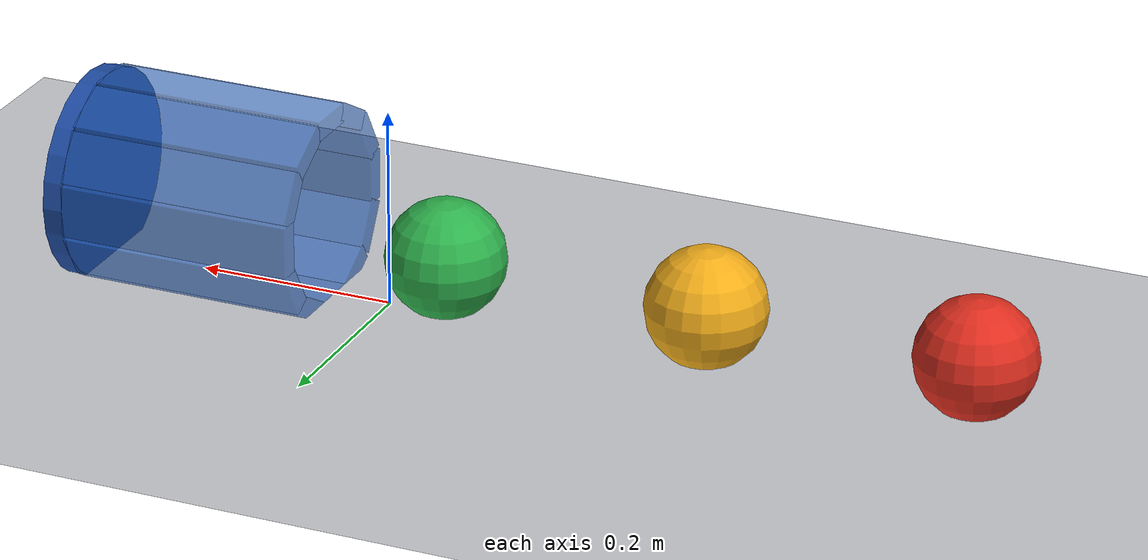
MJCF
<mujoco model="three_balls_into_cup">
  <compiler angle="degree"/>
  <option timestep="0.002" gravity="0 0 -9.81" integrator="implicitfast" cone="elliptic" iterations="80"/>
  <size nconmax="200" njmax="1000"/>

  <visual>
    <global azimuth="225" elevation="-25"/>
    <headlight ambient="0.4 0.4 0.4" diffuse="0.7 0.7 0.7" specular="0.2 0.2 0.2"/>
  </visual>

  <worldbody>
    <light name="overhead" pos="-0.3 -0.5 2" dir="0 0 -1" diffuse="0.8 0.8 0.8"/>
    <camera name="overview" pos="-1.1 -1.5 0.95" xyaxes="0.806 -0.592 0 0.265 0.360 0.895"/>

    <geom name="floor" type="plane" size="3 3 0.1" rgba="0.78 0.79 0.81 1" condim="6" friction="0.65 0.0001 0.0025" solref="0.006 1" solimp="0.95 0.99 0.001"/>

    <!-- Center-weighted balls retain less spin after transferring momentum. -->
    <body name="ball1" pos="-0.60 0 0.06">
      <freejoint name="ball1_free"/>
      <inertial pos="0 0 0" mass="0.1" diaginertia="0.000036 0.000036 0.000036"/>
      <geom name="ball1_geom" type="sphere" size="0.06" rgba="0.88 0.18 0.12 1" condim="6" friction="0.65 0.0001 0.0025" solref="0.006 1" solimp="0.95 0.99 0.001"/>
    </body>

    <body name="ball2" pos="-0.33 0 0.06">
      <freejoint name="ball2_free"/>
      <inertial pos="0 0 0" mass="0.1" diaginertia="0.000036 0.000036 0.000036"/>
      <geom name="ball2_geom" type="sphere" size="0.06" rgba="0.95 0.68 0.10 1" condim="6" friction="0.65 0.0001 0.0025" solref="0.006 1" solimp="0.95 0.99 0.001"/>
    </body>

    <body name="ball3" pos="-0.06 0 0.06">
      <freejoint name="ball3_free"/>
      <inertial pos="0 0 0" mass="0.1" diaginertia="0.000036 0.000036 0.000036"/>
      <geom name="ball3_geom" type="sphere" size="0.06" rgba="0.18 0.70 0.30 1" condim="6" friction="0.65 0.0001 0.0025" solref="0.006 1" solimp="0.95 0.99 0.001"/>
    </body>

    <!-- A fixed cup lying on its side, with its open mouth facing the balls.
         Its inner bottom is flush with the floor, avoiding an entrance step. -->
    <body name="cup" pos="0.18 0 0.085">
      <geom name="cup_wall_00" type="box" pos="0 0 0.095" euler="0 0 0" size="0.12 0.026 0.01" rgba="0.15 0.38 0.75 0.65" condim="6" friction="0.65 0.0001 0.0025" solref="0.008 1"/>
      <geom name="cup_wall_01" type="box" pos="0 -0.0475 0.0822724" euler="30 0 0" size="0.12 0.026 0.01" rgba="0.15 0.38 0.75 0.65" condim="6" friction="0.65 0.0001 0.0025" solref="0.008 1"/>
      <geom name="cup_wall_02" type="box" pos="0 -0.0822724 0.0475" euler="60 0 0" size="0.12 0.026 0.01" rgba="0.15 0.38 0.75 0.65" condim="6" friction="0.65 0.0001 0.0025" solref="0.008 1"/>
      <geom name="cup_wall_03" type="box" pos="0 -0.095 0" euler="90 0 0" size="0.12 0.026 0.01" rgba="0.15 0.38 0.75 0.65" condim="6" friction="0.65 0.0001 0.0025" solref="0.008 1"/>
      <geom name="cup_wall_04" type="box" pos="0 -0.0822724 -0.0475" euler="120 0 0" size="0.12 0.026 0.01" rgba="0.15 0.38 0.75 0.65" condim="6" friction="0.65 0.0001 0.0025" solref="0.008 1"/>
      <geom name="cup_wall_05" type="box" pos="0 -0.0475 -0.0822724" euler="150 0 0" size="0.12 0.026 0.01" rgba="0.15 0.38 0.75 0.65" condim="6" friction="0.65 0.0001 0.0025" solref="0.008 1"/>
      <geom name="cup_wall_06" type="box" pos="0 0 -0.095" euler="180 0 0" size="0.12 0.026 0.01" rgba="0.15 0.38 0.75 0.65" condim="6" friction="0.65 0.0001 0.0025" solref="0.008 1"/>
      <geom name="cup_wall_07" type="box" pos="0 0.0475 -0.0822724" euler="210 0 0" size="0.12 0.026 0.01" rgba="0.15 0.38 0.75 0.65" condim="6" friction="0.65 0.0001 0.0025" solref="0.008 1"/>
      <geom name="cup_wall_08" type="box" pos="0 0.0822724 -0.0475" euler="240 0 0" size="0.12 0.026 0.01" rgba="0.15 0.38 0.75 0.65" condim="6" friction="0.65 0.0001 0.0025" solref="0.008 1"/>
      <geom name="cup_wall_09" type="box" pos="0 0.095 0" euler="270 0 0" size="0.12 0.026 0.01" rgba="0.15 0.38 0.75 0.65" condim="6" friction="0.65 0.0001 0.0025" solref="0.008 1"/>
      <geom name="cup_wall_10" type="box" pos="0 0.0822724 0.0475" euler="300 0 0" size="0.12 0.026 0.01" rgba="0.15 0.38 0.75 0.65" condim="6" friction="0.65 0.0001 0.0025" solref="0.008 1"/>
      <geom name="cup_wall_11" type="box" pos="0 0.0475 0.0822724" euler="330 0 0" size="0.12 0.026 0.01" rgba="0.15 0.38 0.75 0.65" condim="6" friction="0.65 0.0001 0.0025" solref="0.008 1"/>
      <geom name="cup_back" type="cylinder" pos="0.13 0 0" euler="0 90 0" size="0.105 0.01" rgba="0.12 0.30 0.65 1" condim="6" friction="0.65 0.0001 0.0025" solref="0.008 1"/>
    </body>
  </worldbody>

  <!-- Springy, frictionless ball-to-ball contacts transfer forward momentum.
       Floor and cup contacts remain dissipative. -->
  <contact>
    <pair name="impact_12" geom1="ball1_geom" geom2="ball2_geom" condim="1" solref="-30000 -20" solimp="0.95 0.99 0.001"/>
    <pair name="impact_23" geom1="ball2_geom" geom2="ball3_geom" condim="1" solref="-30000 -20" solimp="0.95 0.99 0.001"/>
    <pair name="impact_13" geom1="ball1_geom" geom2="ball3_geom" condim="1" solref="-30000 -20" solimp="0.95 0.99 0.001"/>
  </contact>

  <keyframe>
    <key name="start" time="0" qpos="-0.60 0 0.06 1 0 0 0 -0.33 0 0.06 1 0 0 0 -0.06 0 0.06 1 0 0 0" qvel="1 0 0 0 16.6666667 0 0 0 0 0 0 0 0 0 0 0 0 0"/>
  </keyframe>
</mujoco>
